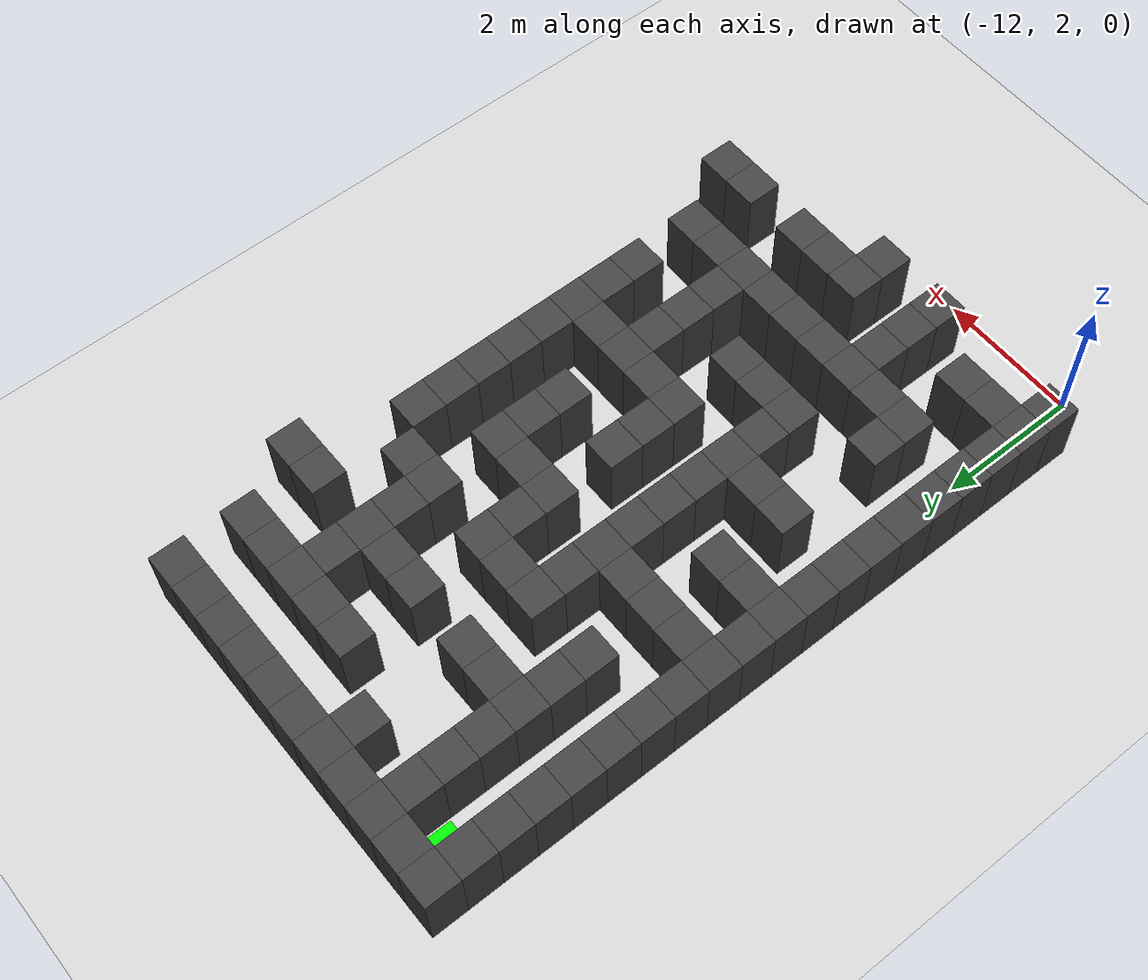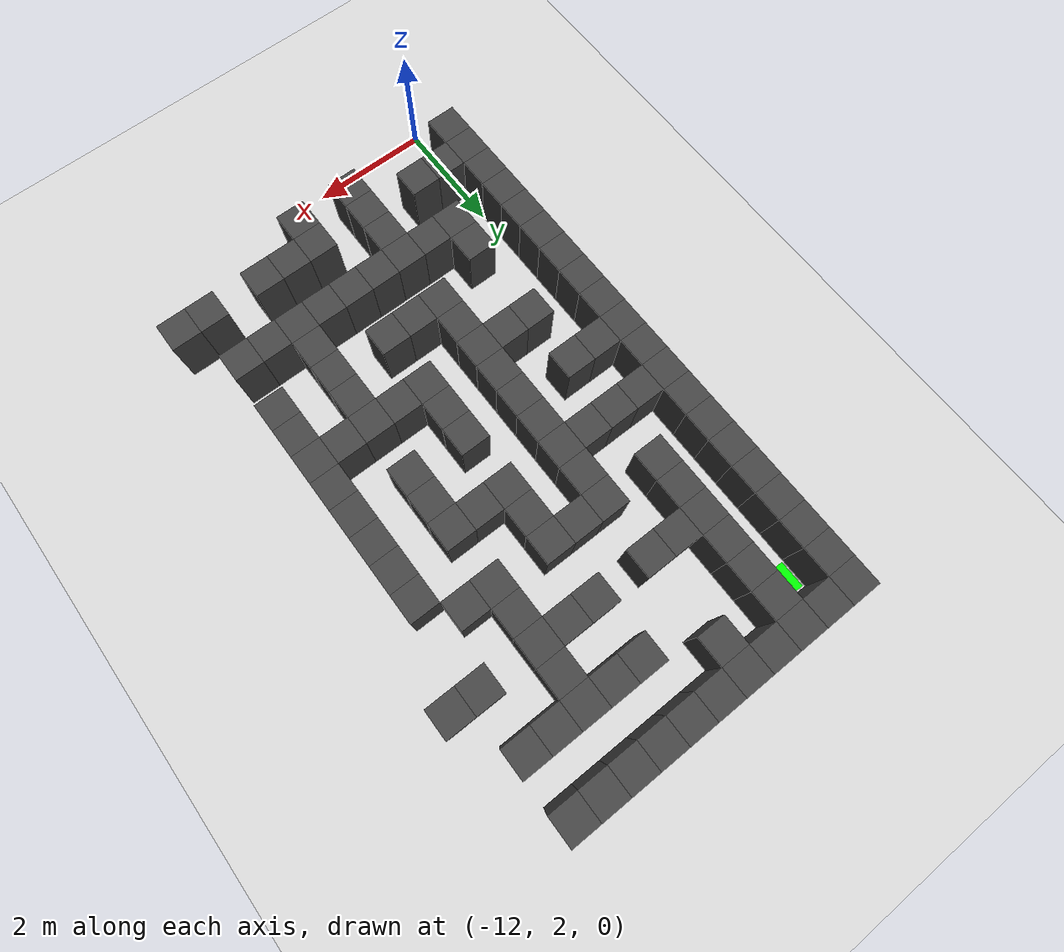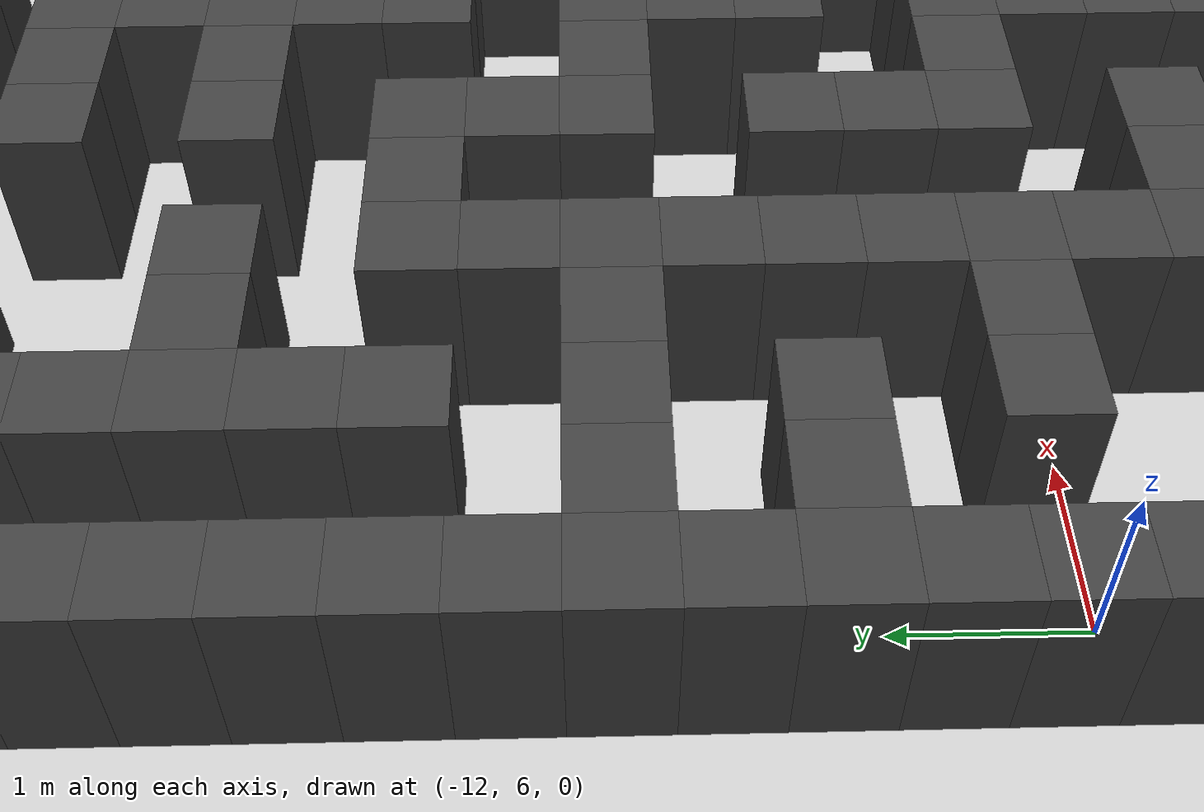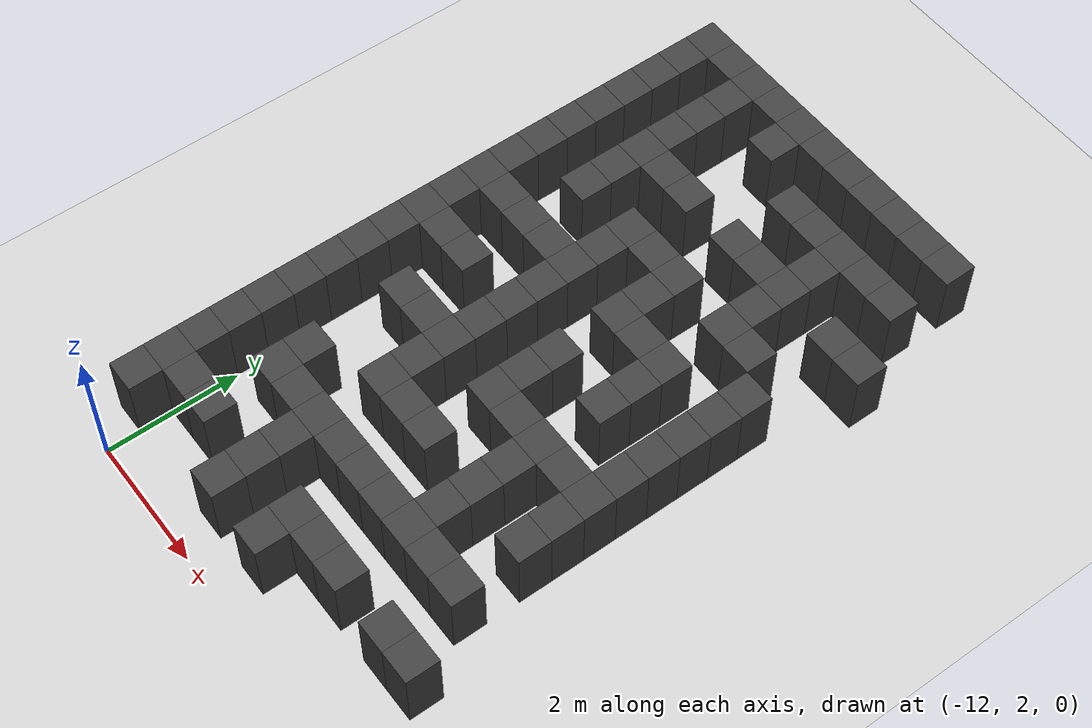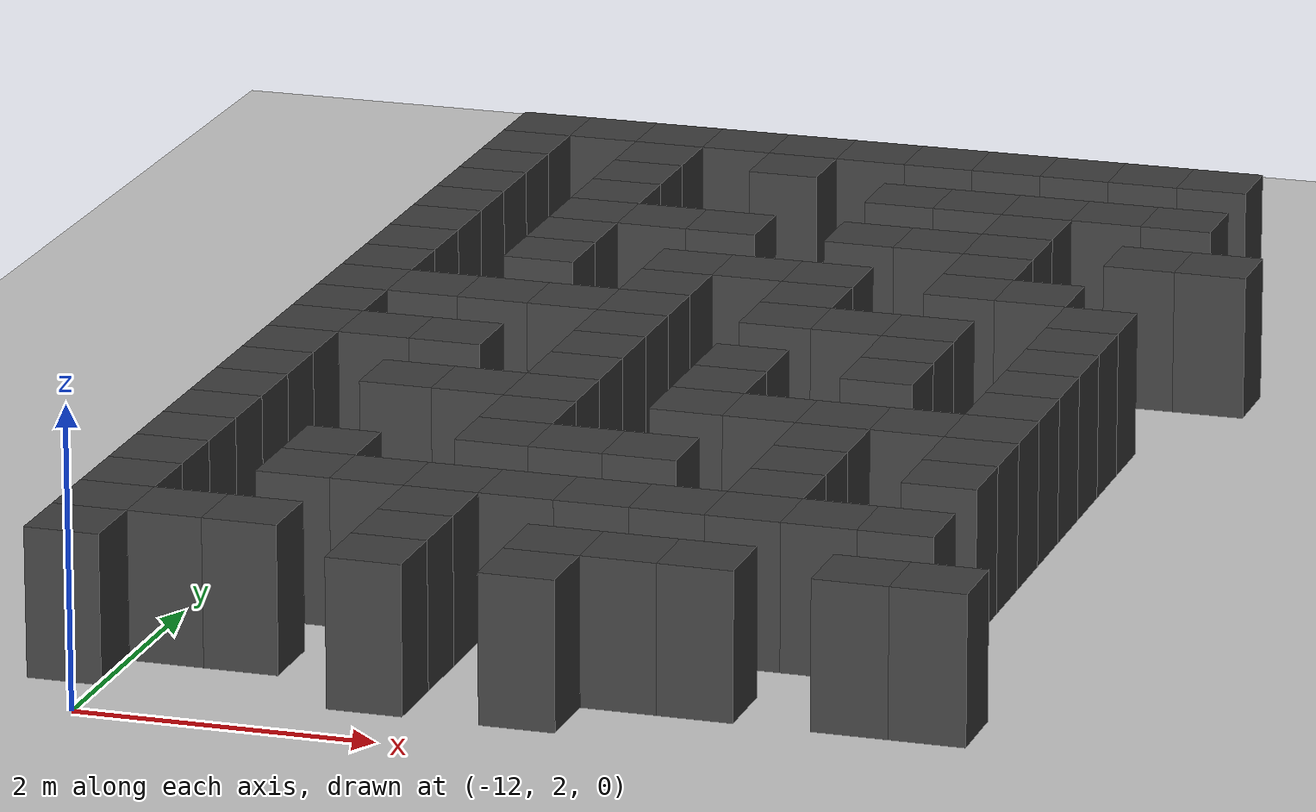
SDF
<sdf version="1.7">
 <world name="map_18332">
  <model name="ground_plane">
   <static>true</static>
   <link name="link">
    <collision name="collision">
     <geometry><plane><normal>0 0 1</normal><size>200 200</size></plane></geometry>
    </collision>
    <visual name="visual">
     <geometry><plane><normal>0 0 1</normal><size>200 200</size></plane></geometry>
     <material><ambient>0.8 0.8 0.8 1</ambient><diffuse>0.8 0.8 0.8 1</diffuse></material>
    </visual>
   </link>
  </model>
  <model name="maze_environment">
   <static>true</static>
   <link name="wall_0">
    <pose>-12.250 12.250 0.500 0 0 0</pose>
    <collision name="col"><geometry><box><size>0.5 0.5 1.0</size></box></geometry></collision>
    <visual name="vis">
     <geometry><box><size>0.5 0.5 1.0</size></box></geometry>
     <material><ambient>0.15 0.15 0.15 1</ambient><diffuse>0.25 0.25 0.25 1</diffuse></material>
    </visual>
   </link>
   <link name="wall_1">
    <pose>-11.750 12.250 0.500 0 0 0</pose>
    <collision name="col"><geometry><box><size>0.5 0.5 1.0</size></box></geometry></collision>
    <visual name="vis">
     <geometry><box><size>0.5 0.5 1.0</size></box></geometry>
     <material><ambient>0.15 0.15 0.15 1</ambient><diffuse>0.25 0.25 0.25 1</diffuse></material>
    </visual>
   </link>
   <link name="wall_2">
    <pose>-11.250 12.250 0.500 0 0 0</pose>
    <collision name="col"><geometry><box><size>0.5 0.5 1.0</size></box></geometry></collision>
    <visual name="vis">
     <geometry><box><size>0.5 0.5 1.0</size></box></geometry>
     <material><ambient>0.15 0.15 0.15 1</ambient><diffuse>0.25 0.25 0.25 1</diffuse></material>
    </visual>
   </link>
   <link name="wall_3">
    <pose>-10.750 12.250 0.500 0 0 0</pose>
    <collision name="col"><geometry><box><size>0.5 0.5 1.0</size></box></geometry></collision>
    <visual name="vis">
     <geometry><box><size>0.5 0.5 1.0</size></box></geometry>
     <material><ambient>0.15 0.15 0.15 1</ambient><diffuse>0.25 0.25 0.25 1</diffuse></material>
    </visual>
   </link>
   <link name="wall_4">
    <pose>-10.250 12.250 0.500 0 0 0</pose>
    <collision name="col"><geometry><box><size>0.5 0.5 1.0</size></box></geometry></collision>
    <visual name="vis">
     <geometry><box><size>0.5 0.5 1.0</size></box></geometry>
     <material><ambient>0.15 0.15 0.15 1</ambient><diffuse>0.25 0.25 0.25 1</diffuse></material>
    </visual>
   </link>
   <link name="wall_5">
    <pose>-9.750 12.250 0.500 0 0 0</pose>
    <collision name="col"><geometry><box><size>0.5 0.5 1.0</size></box></geometry></collision>
    <visual name="vis">
     <geometry><box><size>0.5 0.5 1.0</size></box></geometry>
     <material><ambient>0.15 0.15 0.15 1</ambient><diffuse>0.25 0.25 0.25 1</diffuse></material>
    </visual>
   </link>
   <link name="wall_6">
    <pose>-9.250 12.250 0.500 0 0 0</pose>
    <collision name="col"><geometry><box><size>0.5 0.5 1.0</size></box></geometry></collision>
    <visual name="vis">
     <geometry><box><size>0.5 0.5 1.0</size></box></geometry>
     <material><ambient>0.15 0.15 0.15 1</ambient><diffuse>0.25 0.25 0.25 1</diffuse></material>
    </visual>
   </link>
   <link name="wall_7">
    <pose>-8.750 12.250 0.500 0 0 0</pose>
    <collision name="col"><geometry><box><size>0.5 0.5 1.0</size></box></geometry></collision>
    <visual name="vis">
     <geometry><box><size>0.5 0.5 1.0</size></box></geometry>
     <material><ambient>0.15 0.15 0.15 1</ambient><diffuse>0.25 0.25 0.25 1</diffuse></material>
    </visual>
   </link>
   <link name="wall_8">
    <pose>-8.250 12.250 0.500 0 0 0</pose>
    <collision name="col"><geometry><box><size>0.5 0.5 1.0</size></box></geometry></collision>
    <visual name="vis">
     <geometry><box><size>0.5 0.5 1.0</size></box></geometry>
     <material><ambient>0.15 0.15 0.15 1</ambient><diffuse>0.25 0.25 0.25 1</diffuse></material>
    </visual>
   </link>
   <link name="wall_9">
    <pose>-7.750 12.250 0.500 0 0 0</pose>
    <collision name="col"><geometry><box><size>0.5 0.5 1.0</size></box></geometry></collision>
    <visual name="vis">
     <geometry><box><size>0.5 0.5 1.0</size></box></geometry>
     <material><ambient>0.15 0.15 0.15 1</ambient><diffuse>0.25 0.25 0.25 1</diffuse></material>
    </visual>
   </link>
   <link name="wall_10">
    <pose>-7.250 12.250 0.500 0 0 0</pose>
    <collision name="col"><geometry><box><size>0.5 0.5 1.0</size></box></geometry></collision>
    <visual name="vis">
     <geometry><box><size>0.5 0.5 1.0</size></box></geometry>
     <material><ambient>0.15 0.15 0.15 1</ambient><diffuse>0.25 0.25 0.25 1</diffuse></material>
    </visual>
   </link>
   <link name="wall_50">
    <pose>-12.250 11.750 0.500 0 0 0</pose>
    <collision name="col"><geometry><box><size>0.5 0.5 1.0</size></box></geometry></collision>
    <visual name="vis">
     <geometry><box><size>0.5 0.5 1.0</size></box></geometry>
     <material><ambient>0.15 0.15 0.15 1</ambient><diffuse>0.25 0.25 0.25 1</diffuse></material>
    </visual>
   </link>
   <link name="wall_51">
    <pose>-11.250 11.750 0.500 0 0 0</pose>
    <collision name="col"><geometry><box><size>0.5 0.5 1.0</size></box></geometry></collision>
    <visual name="vis">
     <geometry><box><size>0.5 0.5 1.0</size></box></geometry>
     <material><ambient>0.15 0.15 0.15 1</ambient><diffuse>0.25 0.25 0.25 1</diffuse></material>
    </visual>
   </link>
   <link name="wall_52">
    <pose>-10.250 11.750 0.500 0 0 0</pose>
    <collision name="col"><geometry><box><size>0.5 0.5 1.0</size></box></geometry></collision>
    <visual name="vis">
     <geometry><box><size>0.5 0.5 1.0</size></box></geometry>
     <material><ambient>0.15 0.15 0.15 1</ambient><diffuse>0.25 0.25 0.25 1</diffuse></material>
    </visual>
   </link>
   <link name="wall_58">
    <pose>-12.250 11.250 0.500 0 0 0</pose>
    <collision name="col"><geometry><box><size>0.5 0.5 1.0</size></box></geometry></collision>
    <visual name="vis">
     <geometry><box><size>0.5 0.5 1.0</size></box></geometry>
     <material><ambient>0.15 0.15 0.15 1</ambient><diffuse>0.25 0.25 0.25 1</diffuse></material>
    </visual>
   </link>
   <link name="wall_59">
    <pose>-11.250 11.250 0.500 0 0 0</pose>
    <collision name="col"><geometry><box><size>0.5 0.5 1.0</size></box></geometry></collision>
    <visual name="vis">
     <geometry><box><size>0.5 0.5 1.0</size></box></geometry>
     <material><ambient>0.15 0.15 0.15 1</ambient><diffuse>0.25 0.25 0.25 1</diffuse></material>
    </visual>
   </link>
   <link name="wall_60">
    <pose>-9.250 11.250 0.500 0 0 0</pose>
    <collision name="col"><geometry><box><size>0.5 0.5 1.0</size></box></geometry></collision>
    <visual name="vis">
     <geometry><box><size>0.5 0.5 1.0</size></box></geometry>
     <material><ambient>0.15 0.15 0.15 1</ambient><diffuse>0.25 0.25 0.25 1</diffuse></material>
    </visual>
   </link>
   <link name="wall_61">
    <pose>-8.750 11.250 0.500 0 0 0</pose>
    <collision name="col"><geometry><box><size>0.5 0.5 1.0</size></box></geometry></collision>
    <visual name="vis">
     <geometry><box><size>0.5 0.5 1.0</size></box></geometry>
     <material><ambient>0.15 0.15 0.15 1</ambient><diffuse>0.25 0.25 0.25 1</diffuse></material>
    </visual>
   </link>
   <link name="wall_62">
    <pose>-8.250 11.250 0.500 0 0 0</pose>
    <collision name="col"><geometry><box><size>0.5 0.5 1.0</size></box></geometry></collision>
    <visual name="vis">
     <geometry><box><size>0.5 0.5 1.0</size></box></geometry>
     <material><ambient>0.15 0.15 0.15 1</ambient><diffuse>0.25 0.25 0.25 1</diffuse></material>
    </visual>
   </link>
   <link name="wall_63">
    <pose>-7.750 11.250 0.500 0 0 0</pose>
    <collision name="col"><geometry><box><size>0.5 0.5 1.0</size></box></geometry></collision>
    <visual name="vis">
     <geometry><box><size>0.5 0.5 1.0</size></box></geometry>
     <material><ambient>0.15 0.15 0.15 1</ambient><diffuse>0.25 0.25 0.25 1</diffuse></material>
    </visual>
   </link>
   <link name="wall_64">
    <pose>-7.250 11.250 0.500 0 0 0</pose>
    <collision name="col"><geometry><box><size>0.5 0.5 1.0</size></box></geometry></collision>
    <visual name="vis">
     <geometry><box><size>0.5 0.5 1.0</size></box></geometry>
     <material><ambient>0.15 0.15 0.15 1</ambient><diffuse>0.25 0.25 0.25 1</diffuse></material>
    </visual>
   </link>
   <link name="wall_93">
    <pose>-12.250 10.750 0.500 0 0 0</pose>
    <collision name="col"><geometry><box><size>0.5 0.5 1.0</size></box></geometry></collision>
    <visual name="vis">
     <geometry><box><size>0.5 0.5 1.0</size></box></geometry>
     <material><ambient>0.15 0.15 0.15 1</ambient><diffuse>0.25 0.25 0.25 1</diffuse></material>
    </visual>
   </link>
   <link name="wall_94">
    <pose>-11.250 10.750 0.500 0 0 0</pose>
    <collision name="col"><geometry><box><size>0.5 0.5 1.0</size></box></geometry></collision>
    <visual name="vis">
     <geometry><box><size>0.5 0.5 1.0</size></box></geometry>
     <material><ambient>0.15 0.15 0.15 1</ambient><diffuse>0.25 0.25 0.25 1</diffuse></material>
    </visual>
   </link>
   <link name="wall_95">
    <pose>-8.250 10.750 0.500 0 0 0</pose>
    <collision name="col"><geometry><box><size>0.5 0.5 1.0</size></box></geometry></collision>
    <visual name="vis">
     <geometry><box><size>0.5 0.5 1.0</size></box></geometry>
     <material><ambient>0.15 0.15 0.15 1</ambient><diffuse>0.25 0.25 0.25 1</diffuse></material>
    </visual>
   </link>
   <link name="wall_107">
    <pose>-12.250 10.250 0.500 0 0 0</pose>
    <collision name="col"><geometry><box><size>0.5 0.5 1.0</size></box></geometry></collision>
    <visual name="vis">
     <geometry><box><size>0.5 0.5 1.0</size></box></geometry>
     <material><ambient>0.15 0.15 0.15 1</ambient><diffuse>0.25 0.25 0.25 1</diffuse></material>
    </visual>
   </link>
   <link name="wall_108">
    <pose>-11.250 10.250 0.500 0 0 0</pose>
    <collision name="col"><geometry><box><size>0.5 0.5 1.0</size></box></geometry></collision>
    <visual name="vis">
     <geometry><box><size>0.5 0.5 1.0</size></box></geometry>
     <material><ambient>0.15 0.15 0.15 1</ambient><diffuse>0.25 0.25 0.25 1</diffuse></material>
    </visual>
   </link>
   <link name="wall_109">
    <pose>-10.750 10.250 0.500 0 0 0</pose>
    <collision name="col"><geometry><box><size>0.5 0.5 1.0</size></box></geometry></collision>
    <visual name="vis">
     <geometry><box><size>0.5 0.5 1.0</size></box></geometry>
     <material><ambient>0.15 0.15 0.15 1</ambient><diffuse>0.25 0.25 0.25 1</diffuse></material>
    </visual>
   </link>
   <link name="wall_110">
    <pose>-10.250 10.250 0.500 0 0 0</pose>
    <collision name="col"><geometry><box><size>0.5 0.5 1.0</size></box></geometry></collision>
    <visual name="vis">
     <geometry><box><size>0.5 0.5 1.0</size></box></geometry>
     <material><ambient>0.15 0.15 0.15 1</ambient><diffuse>0.25 0.25 0.25 1</diffuse></material>
    </visual>
   </link>
   <link name="wall_111">
    <pose>-9.250 10.250 0.500 0 0 0</pose>
    <collision name="col"><geometry><box><size>0.5 0.5 1.0</size></box></geometry></collision>
    <visual name="vis">
     <geometry><box><size>0.5 0.5 1.0</size></box></geometry>
     <material><ambient>0.15 0.15 0.15 1</ambient><diffuse>0.25 0.25 0.25 1</diffuse></material>
    </visual>
   </link>
   <link name="wall_112">
    <pose>-8.750 10.250 0.500 0 0 0</pose>
    <collision name="col"><geometry><box><size>0.5 0.5 1.0</size></box></geometry></collision>
    <visual name="vis">
     <geometry><box><size>0.5 0.5 1.0</size></box></geometry>
     <material><ambient>0.15 0.15 0.15 1</ambient><diffuse>0.25 0.25 0.25 1</diffuse></material>
    </visual>
   </link>
   <link name="wall_113">
    <pose>-8.250 10.250 0.500 0 0 0</pose>
    <collision name="col"><geometry><box><size>0.5 0.5 1.0</size></box></geometry></collision>
    <visual name="vis">
     <geometry><box><size>0.5 0.5 1.0</size></box></geometry>
     <material><ambient>0.15 0.15 0.15 1</ambient><diffuse>0.25 0.25 0.25 1</diffuse></material>
    </visual>
   </link>
   <link name="wall_114">
    <pose>-7.250 10.250 0.500 0 0 0</pose>
    <collision name="col"><geometry><box><size>0.5 0.5 1.0</size></box></geometry></collision>
    <visual name="vis">
     <geometry><box><size>0.5 0.5 1.0</size></box></geometry>
     <material><ambient>0.15 0.15 0.15 1</ambient><diffuse>0.25 0.25 0.25 1</diffuse></material>
    </visual>
   </link>
   <link name="wall_115">
    <pose>-6.750 10.250 0.500 0 0 0</pose>
    <collision name="col"><geometry><box><size>0.5 0.5 1.0</size></box></geometry></collision>
    <visual name="vis">
     <geometry><box><size>0.5 0.5 1.0</size></box></geometry>
     <material><ambient>0.15 0.15 0.15 1</ambient><diffuse>0.25 0.25 0.25 1</diffuse></material>
    </visual>
   </link>
   <link name="wall_145">
    <pose>-12.250 9.750 0.500 0 0 0</pose>
    <collision name="col"><geometry><box><size>0.5 0.5 1.0</size></box></geometry></collision>
    <visual name="vis">
     <geometry><box><size>0.5 0.5 1.0</size></box></geometry>
     <material><ambient>0.15 0.15 0.15 1</ambient><diffuse>0.25 0.25 0.25 1</diffuse></material>
    </visual>
   </link>
   <link name="wall_146">
    <pose>-11.250 9.750 0.500 0 0 0</pose>
    <collision name="col"><geometry><box><size>0.5 0.5 1.0</size></box></geometry></collision>
    <visual name="vis">
     <geometry><box><size>0.5 0.5 1.0</size></box></geometry>
     <material><ambient>0.15 0.15 0.15 1</ambient><diffuse>0.25 0.25 0.25 1</diffuse></material>
    </visual>
   </link>
   <link name="wall_147">
    <pose>-8.250 9.750 0.500 0 0 0</pose>
    <collision name="col"><geometry><box><size>0.5 0.5 1.0</size></box></geometry></collision>
    <visual name="vis">
     <geometry><box><size>0.5 0.5 1.0</size></box></geometry>
     <material><ambient>0.15 0.15 0.15 1</ambient><diffuse>0.25 0.25 0.25 1</diffuse></material>
    </visual>
   </link>
   <link name="wall_159">
    <pose>-12.250 9.250 0.500 0 0 0</pose>
    <collision name="col"><geometry><box><size>0.5 0.5 1.0</size></box></geometry></collision>
    <visual name="vis">
     <geometry><box><size>0.5 0.5 1.0</size></box></geometry>
     <material><ambient>0.15 0.15 0.15 1</ambient><diffuse>0.25 0.25 0.25 1</diffuse></material>
    </visual>
   </link>
   <link name="wall_160">
    <pose>-11.250 9.250 0.500 0 0 0</pose>
    <collision name="col"><geometry><box><size>0.5 0.5 1.0</size></box></geometry></collision>
    <visual name="vis">
     <geometry><box><size>0.5 0.5 1.0</size></box></geometry>
     <material><ambient>0.15 0.15 0.15 1</ambient><diffuse>0.25 0.25 0.25 1</diffuse></material>
    </visual>
   </link>
   <link name="wall_161">
    <pose>-10.250 9.250 0.500 0 0 0</pose>
    <collision name="col"><geometry><box><size>0.5 0.5 1.0</size></box></geometry></collision>
    <visual name="vis">
     <geometry><box><size>0.5 0.5 1.0</size></box></geometry>
     <material><ambient>0.15 0.15 0.15 1</ambient><diffuse>0.25 0.25 0.25 1</diffuse></material>
    </visual>
   </link>
   <link name="wall_162">
    <pose>-9.750 9.250 0.500 0 0 0</pose>
    <collision name="col"><geometry><box><size>0.5 0.5 1.0</size></box></geometry></collision>
    <visual name="vis">
     <geometry><box><size>0.5 0.5 1.0</size></box></geometry>
     <material><ambient>0.15 0.15 0.15 1</ambient><diffuse>0.25 0.25 0.25 1</diffuse></material>
    </visual>
   </link>
   <link name="wall_163">
    <pose>-9.250 9.250 0.500 0 0 0</pose>
    <collision name="col"><geometry><box><size>0.5 0.5 1.0</size></box></geometry></collision>
    <visual name="vis">
     <geometry><box><size>0.5 0.5 1.0</size></box></geometry>
     <material><ambient>0.15 0.15 0.15 1</ambient><diffuse>0.25 0.25 0.25 1</diffuse></material>
    </visual>
   </link>
   <link name="wall_164">
    <pose>-8.250 9.250 0.500 0 0 0</pose>
    <collision name="col"><geometry><box><size>0.5 0.5 1.0</size></box></geometry></collision>
    <visual name="vis">
     <geometry><box><size>0.5 0.5 1.0</size></box></geometry>
     <material><ambient>0.15 0.15 0.15 1</ambient><diffuse>0.25 0.25 0.25 1</diffuse></material>
    </visual>
   </link>
   <link name="wall_165">
    <pose>-7.750 9.250 0.500 0 0 0</pose>
    <collision name="col"><geometry><box><size>0.5 0.5 1.0</size></box></geometry></collision>
    <visual name="vis">
     <geometry><box><size>0.5 0.5 1.0</size></box></geometry>
     <material><ambient>0.15 0.15 0.15 1</ambient><diffuse>0.25 0.25 0.25 1</diffuse></material>
    </visual>
   </link>
   <link name="wall_194">
    <pose>-12.250 8.750 0.500 0 0 0</pose>
    <collision name="col"><geometry><box><size>0.5 0.5 1.0</size></box></geometry></collision>
    <visual name="vis">
     <geometry><box><size>0.5 0.5 1.0</size></box></geometry>
     <material><ambient>0.15 0.15 0.15 1</ambient><diffuse>0.25 0.25 0.25 1</diffuse></material>
    </visual>
   </link>
   <link name="wall_195">
    <pose>-10.250 8.750 0.500 0 0 0</pose>
    <collision name="col"><geometry><box><size>0.5 0.5 1.0</size></box></geometry></collision>
    <visual name="vis">
     <geometry><box><size>0.5 0.5 1.0</size></box></geometry>
     <material><ambient>0.15 0.15 0.15 1</ambient><diffuse>0.25 0.25 0.25 1</diffuse></material>
    </visual>
   </link>
   <link name="wall_196">
    <pose>-9.250 8.750 0.500 0 0 0</pose>
    <collision name="col"><geometry><box><size>0.5 0.5 1.0</size></box></geometry></collision>
    <visual name="vis">
     <geometry><box><size>0.5 0.5 1.0</size></box></geometry>
     <material><ambient>0.15 0.15 0.15 1</ambient><diffuse>0.25 0.25 0.25 1</diffuse></material>
    </visual>
   </link>
   <link name="wall_197">
    <pose>-7.250 8.750 0.500 0 0 0</pose>
    <collision name="col"><geometry><box><size>0.5 0.5 1.0</size></box></geometry></collision>
    <visual name="vis">
     <geometry><box><size>0.5 0.5 1.0</size></box></geometry>
     <material><ambient>0.15 0.15 0.15 1</ambient><diffuse>0.25 0.25 0.25 1</diffuse></material>
    </visual>
   </link>
   <link name="wall_208">
    <pose>-12.250 8.250 0.500 0 0 0</pose>
    <collision name="col"><geometry><box><size>0.5 0.5 1.0</size></box></geometry></collision>
    <visual name="vis">
     <geometry><box><size>0.5 0.5 1.0</size></box></geometry>
     <material><ambient>0.15 0.15 0.15 1</ambient><diffuse>0.25 0.25 0.25 1</diffuse></material>
    </visual>
   </link>
   <link name="wall_209">
    <pose>-11.750 8.250 0.500 0 0 0</pose>
    <collision name="col"><geometry><box><size>0.5 0.5 1.0</size></box></geometry></collision>
    <visual name="vis">
     <geometry><box><size>0.5 0.5 1.0</size></box></geometry>
     <material><ambient>0.15 0.15 0.15 1</ambient><diffuse>0.25 0.25 0.25 1</diffuse></material>
    </visual>
   </link>
   <link name="wall_210">
    <pose>-11.250 8.250 0.500 0 0 0</pose>
    <collision name="col"><geometry><box><size>0.5 0.5 1.0</size></box></geometry></collision>
    <visual name="vis">
     <geometry><box><size>0.5 0.5 1.0</size></box></geometry>
     <material><ambient>0.15 0.15 0.15 1</ambient><diffuse>0.25 0.25 0.25 1</diffuse></material>
    </visual>
   </link>
   <link name="wall_211">
    <pose>-10.750 8.250 0.500 0 0 0</pose>
    <collision name="col"><geometry><box><size>0.5 0.5 1.0</size></box></geometry></collision>
    <visual name="vis">
     <geometry><box><size>0.5 0.5 1.0</size></box></geometry>
     <material><ambient>0.15 0.15 0.15 1</ambient><diffuse>0.25 0.25 0.25 1</diffuse></material>
    </visual>
   </link>
   <link name="wall_212">
    <pose>-10.250 8.250 0.500 0 0 0</pose>
    <collision name="col"><geometry><box><size>0.5 0.5 1.0</size></box></geometry></collision>
    <visual name="vis">
     <geometry><box><size>0.5 0.5 1.0</size></box></geometry>
     <material><ambient>0.15 0.15 0.15 1</ambient><diffuse>0.25 0.25 0.25 1</diffuse></material>
    </visual>
   </link>
   <link name="wall_213">
    <pose>-9.250 8.250 0.500 0 0 0</pose>
    <collision name="col"><geometry><box><size>0.5 0.5 1.0</size></box></geometry></collision>
    <visual name="vis">
     <geometry><box><size>0.5 0.5 1.0</size></box></geometry>
     <material><ambient>0.15 0.15 0.15 1</ambient><diffuse>0.25 0.25 0.25 1</diffuse></material>
    </visual>
   </link>
   <link name="wall_214">
    <pose>-8.750 8.250 0.500 0 0 0</pose>
    <collision name="col"><geometry><box><size>0.5 0.5 1.0</size></box></geometry></collision>
    <visual name="vis">
     <geometry><box><size>0.5 0.5 1.0</size></box></geometry>
     <material><ambient>0.15 0.15 0.15 1</ambient><diffuse>0.25 0.25 0.25 1</diffuse></material>
    </visual>
   </link>
   <link name="wall_215">
    <pose>-8.250 8.250 0.500 0 0 0</pose>
    <collision name="col"><geometry><box><size>0.5 0.5 1.0</size></box></geometry></collision>
    <visual name="vis">
     <geometry><box><size>0.5 0.5 1.0</size></box></geometry>
     <material><ambient>0.15 0.15 0.15 1</ambient><diffuse>0.25 0.25 0.25 1</diffuse></material>
    </visual>
   </link>
   <link name="wall_216">
    <pose>-7.250 8.250 0.500 0 0 0</pose>
    <collision name="col"><geometry><box><size>0.5 0.5 1.0</size></box></geometry></collision>
    <visual name="vis">
     <geometry><box><size>0.5 0.5 1.0</size></box></geometry>
     <material><ambient>0.15 0.15 0.15 1</ambient><diffuse>0.25 0.25 0.25 1</diffuse></material>
    </visual>
   </link>
   <link name="wall_244">
    <pose>-12.250 7.750 0.500 0 0 0</pose>
    <collision name="col"><geometry><box><size>0.5 0.5 1.0</size></box></geometry></collision>
    <visual name="vis">
     <geometry><box><size>0.5 0.5 1.0</size></box></geometry>
     <material><ambient>0.15 0.15 0.15 1</ambient><diffuse>0.25 0.25 0.25 1</diffuse></material>
    </visual>
   </link>
   <link name="wall_245">
    <pose>-10.250 7.750 0.500 0 0 0</pose>
    <collision name="col"><geometry><box><size>0.5 0.5 1.0</size></box></geometry></collision>
    <visual name="vis">
     <geometry><box><size>0.5 0.5 1.0</size></box></geometry>
     <material><ambient>0.15 0.15 0.15 1</ambient><diffuse>0.25 0.25 0.25 1</diffuse></material>
    </visual>
   </link>
   <link name="wall_246">
    <pose>-8.250 7.750 0.500 0 0 0</pose>
    <collision name="col"><geometry><box><size>0.5 0.5 1.0</size></box></geometry></collision>
    <visual name="vis">
     <geometry><box><size>0.5 0.5 1.0</size></box></geometry>
     <material><ambient>0.15 0.15 0.15 1</ambient><diffuse>0.25 0.25 0.25 1</diffuse></material>
    </visual>
   </link>
   <link name="wall_247">
    <pose>-7.250 7.750 0.500 0 0 0</pose>
    <collision name="col"><geometry><box><size>0.5 0.5 1.0</size></box></geometry></collision>
    <visual name="vis">
     <geometry><box><size>0.5 0.5 1.0</size></box></geometry>
     <material><ambient>0.15 0.15 0.15 1</ambient><diffuse>0.25 0.25 0.25 1</diffuse></material>
    </visual>
   </link>
   <link name="wall_258">
    <pose>-12.250 7.250 0.500 0 0 0</pose>
    <collision name="col"><geometry><box><size>0.5 0.5 1.0</size></box></geometry></collision>
    <visual name="vis">
     <geometry><box><size>0.5 0.5 1.0</size></box></geometry>
     <material><ambient>0.15 0.15 0.15 1</ambient><diffuse>0.25 0.25 0.25 1</diffuse></material>
    </visual>
   </link>
   <link name="wall_259">
    <pose>-11.750 7.250 0.500 0 0 0</pose>
    <collision name="col"><geometry><box><size>0.5 0.5 1.0</size></box></geometry></collision>
    <visual name="vis">
     <geometry><box><size>0.5 0.5 1.0</size></box></geometry>
     <material><ambient>0.15 0.15 0.15 1</ambient><diffuse>0.25 0.25 0.25 1</diffuse></material>
    </visual>
   </link>
   <link name="wall_260">
    <pose>-11.250 7.250 0.500 0 0 0</pose>
    <collision name="col"><geometry><box><size>0.5 0.5 1.0</size></box></geometry></collision>
    <visual name="vis">
     <geometry><box><size>0.5 0.5 1.0</size></box></geometry>
     <material><ambient>0.15 0.15 0.15 1</ambient><diffuse>0.25 0.25 0.25 1</diffuse></material>
    </visual>
   </link>
   <link name="wall_261">
    <pose>-10.250 7.250 0.500 0 0 0</pose>
    <collision name="col"><geometry><box><size>0.5 0.5 1.0</size></box></geometry></collision>
    <visual name="vis">
     <geometry><box><size>0.5 0.5 1.0</size></box></geometry>
     <material><ambient>0.15 0.15 0.15 1</ambient><diffuse>0.25 0.25 0.25 1</diffuse></material>
    </visual>
   </link>
   <link name="wall_262">
    <pose>-9.250 7.250 0.500 0 0 0</pose>
    <collision name="col"><geometry><box><size>0.5 0.5 1.0</size></box></geometry></collision>
    <visual name="vis">
     <geometry><box><size>0.5 0.5 1.0</size></box></geometry>
     <material><ambient>0.15 0.15 0.15 1</ambient><diffuse>0.25 0.25 0.25 1</diffuse></material>
    </visual>
   </link>
   <link name="wall_263">
    <pose>-8.250 7.250 0.500 0 0 0</pose>
    <collision name="col"><geometry><box><size>0.5 0.5 1.0</size></box></geometry></collision>
    <visual name="vis">
     <geometry><box><size>0.5 0.5 1.0</size></box></geometry>
     <material><ambient>0.15 0.15 0.15 1</ambient><diffuse>0.25 0.25 0.25 1</diffuse></material>
    </visual>
   </link>
   <link name="wall_264">
    <pose>-7.250 7.250 0.500 0 0 0</pose>
    <collision name="col"><geometry><box><size>0.5 0.5 1.0</size></box></geometry></collision>
    <visual name="vis">
     <geometry><box><size>0.5 0.5 1.0</size></box></geometry>
     <material><ambient>0.15 0.15 0.15 1</ambient><diffuse>0.25 0.25 0.25 1</diffuse></material>
    </visual>
   </link>
   <link name="wall_293">
    <pose>-12.250 6.750 0.500 0 0 0</pose>
    <collision name="col"><geometry><box><size>0.5 0.5 1.0</size></box></geometry></collision>
    <visual name="vis">
     <geometry><box><size>0.5 0.5 1.0</size></box></geometry>
     <material><ambient>0.15 0.15 0.15 1</ambient><diffuse>0.25 0.25 0.25 1</diffuse></material>
    </visual>
   </link>
   <link name="wall_294">
    <pose>-10.250 6.750 0.500 0 0 0</pose>
    <collision name="col"><geometry><box><size>0.5 0.5 1.0</size></box></geometry></collision>
    <visual name="vis">
     <geometry><box><size>0.5 0.5 1.0</size></box></geometry>
     <material><ambient>0.15 0.15 0.15 1</ambient><diffuse>0.25 0.25 0.25 1</diffuse></material>
    </visual>
   </link>
   <link name="wall_295">
    <pose>-9.250 6.750 0.500 0 0 0</pose>
    <collision name="col"><geometry><box><size>0.5 0.5 1.0</size></box></geometry></collision>
    <visual name="vis">
     <geometry><box><size>0.5 0.5 1.0</size></box></geometry>
     <material><ambient>0.15 0.15 0.15 1</ambient><diffuse>0.25 0.25 0.25 1</diffuse></material>
    </visual>
   </link>
   <link name="wall_296">
    <pose>-7.250 6.750 0.500 0 0 0</pose>
    <collision name="col"><geometry><box><size>0.5 0.5 1.0</size></box></geometry></collision>
    <visual name="vis">
     <geometry><box><size>0.5 0.5 1.0</size></box></geometry>
     <material><ambient>0.15 0.15 0.15 1</ambient><diffuse>0.25 0.25 0.25 1</diffuse></material>
    </visual>
   </link>
   <link name="wall_307">
    <pose>-12.250 6.250 0.500 0 0 0</pose>
    <collision name="col"><geometry><box><size>0.5 0.5 1.0</size></box></geometry></collision>
    <visual name="vis">
     <geometry><box><size>0.5 0.5 1.0</size></box></geometry>
     <material><ambient>0.15 0.15 0.15 1</ambient><diffuse>0.25 0.25 0.25 1</diffuse></material>
    </visual>
   </link>
   <link name="wall_308">
    <pose>-11.250 6.250 0.500 0 0 0</pose>
    <collision name="col"><geometry><box><size>0.5 0.5 1.0</size></box></geometry></collision>
    <visual name="vis">
     <geometry><box><size>0.5 0.5 1.0</size></box></geometry>
     <material><ambient>0.15 0.15 0.15 1</ambient><diffuse>0.25 0.25 0.25 1</diffuse></material>
    </visual>
   </link>
   <link name="wall_309">
    <pose>-10.750 6.250 0.500 0 0 0</pose>
    <collision name="col"><geometry><box><size>0.5 0.5 1.0</size></box></geometry></collision>
    <visual name="vis">
     <geometry><box><size>0.5 0.5 1.0</size></box></geometry>
     <material><ambient>0.15 0.15 0.15 1</ambient><diffuse>0.25 0.25 0.25 1</diffuse></material>
    </visual>
   </link>
   <link name="wall_310">
    <pose>-10.250 6.250 0.500 0 0 0</pose>
    <collision name="col"><geometry><box><size>0.5 0.5 1.0</size></box></geometry></collision>
    <visual name="vis">
     <geometry><box><size>0.5 0.5 1.0</size></box></geometry>
     <material><ambient>0.15 0.15 0.15 1</ambient><diffuse>0.25 0.25 0.25 1</diffuse></material>
    </visual>
   </link>
   <link name="wall_311">
    <pose>-9.250 6.250 0.500 0 0 0</pose>
    <collision name="col"><geometry><box><size>0.5 0.5 1.0</size></box></geometry></collision>
    <visual name="vis">
     <geometry><box><size>0.5 0.5 1.0</size></box></geometry>
     <material><ambient>0.15 0.15 0.15 1</ambient><diffuse>0.25 0.25 0.25 1</diffuse></material>
    </visual>
   </link>
   <link name="wall_312">
    <pose>-8.750 6.250 0.500 0 0 0</pose>
    <collision name="col"><geometry><box><size>0.5 0.5 1.0</size></box></geometry></collision>
    <visual name="vis">
     <geometry><box><size>0.5 0.5 1.0</size></box></geometry>
     <material><ambient>0.15 0.15 0.15 1</ambient><diffuse>0.25 0.25 0.25 1</diffuse></material>
    </visual>
   </link>
   <link name="wall_313">
    <pose>-8.250 6.250 0.500 0 0 0</pose>
    <collision name="col"><geometry><box><size>0.5 0.5 1.0</size></box></geometry></collision>
    <visual name="vis">
     <geometry><box><size>0.5 0.5 1.0</size></box></geometry>
     <material><ambient>0.15 0.15 0.15 1</ambient><diffuse>0.25 0.25 0.25 1</diffuse></material>
    </visual>
   </link>
   <link name="wall_314">
    <pose>-7.750 6.250 0.500 0 0 0</pose>
    <collision name="col"><geometry><box><size>0.5 0.5 1.0</size></box></geometry></collision>
    <visual name="vis">
     <geometry><box><size>0.5 0.5 1.0</size></box></geometry>
     <material><ambient>0.15 0.15 0.15 1</ambient><diffuse>0.25 0.25 0.25 1</diffuse></material>
    </visual>
   </link>
   <link name="wall_315">
    <pose>-7.250 6.250 0.500 0 0 0</pose>
    <collision name="col"><geometry><box><size>0.5 0.5 1.0</size></box></geometry></collision>
    <visual name="vis">
     <geometry><box><size>0.5 0.5 1.0</size></box></geometry>
     <material><ambient>0.15 0.15 0.15 1</ambient><diffuse>0.25 0.25 0.25 1</diffuse></material>
    </visual>
   </link>
   <link name="wall_347">
    <pose>-12.250 5.750 0.500 0 0 0</pose>
    <collision name="col"><geometry><box><size>0.5 0.5 1.0</size></box></geometry></collision>
    <visual name="vis">
     <geometry><box><size>0.5 0.5 1.0</size></box></geometry>
     <material><ambient>0.15 0.15 0.15 1</ambient><diffuse>0.25 0.25 0.25 1</diffuse></material>
    </visual>
   </link>
   <link name="wall_348">
    <pose>-10.250 5.750 0.500 0 0 0</pose>
    <collision name="col"><geometry><box><size>0.5 0.5 1.0</size></box></geometry></collision>
    <visual name="vis">
     <geometry><box><size>0.5 0.5 1.0</size></box></geometry>
     <material><ambient>0.15 0.15 0.15 1</ambient><diffuse>0.25 0.25 0.25 1</diffuse></material>
    </visual>
   </link>
   <link name="wall_349">
    <pose>-8.250 5.750 0.500 0 0 0</pose>
    <collision name="col"><geometry><box><size>0.5 0.5 1.0</size></box></geometry></collision>
    <visual name="vis">
     <geometry><box><size>0.5 0.5 1.0</size></box></geometry>
     <material><ambient>0.15 0.15 0.15 1</ambient><diffuse>0.25 0.25 0.25 1</diffuse></material>
    </visual>
   </link>
   <link name="wall_350">
    <pose>-7.250 5.750 0.500 0 0 0</pose>
    <collision name="col"><geometry><box><size>0.5 0.5 1.0</size></box></geometry></collision>
    <visual name="vis">
     <geometry><box><size>0.5 0.5 1.0</size></box></geometry>
     <material><ambient>0.15 0.15 0.15 1</ambient><diffuse>0.25 0.25 0.25 1</diffuse></material>
    </visual>
   </link>
   <link name="wall_361">
    <pose>-12.250 5.250 0.500 0 0 0</pose>
    <collision name="col"><geometry><box><size>0.5 0.5 1.0</size></box></geometry></collision>
    <visual name="vis">
     <geometry><box><size>0.5 0.5 1.0</size></box></geometry>
     <material><ambient>0.15 0.15 0.15 1</ambient><diffuse>0.25 0.25 0.25 1</diffuse></material>
    </visual>
   </link>
   <link name="wall_362">
    <pose>-10.250 5.250 0.500 0 0 0</pose>
    <collision name="col"><geometry><box><size>0.5 0.5 1.0</size></box></geometry></collision>
    <visual name="vis">
     <geometry><box><size>0.5 0.5 1.0</size></box></geometry>
     <material><ambient>0.15 0.15 0.15 1</ambient><diffuse>0.25 0.25 0.25 1</diffuse></material>
    </visual>
   </link>
   <link name="wall_363">
    <pose>-9.750 5.250 0.500 0 0 0</pose>
    <collision name="col"><geometry><box><size>0.5 0.5 1.0</size></box></geometry></collision>
    <visual name="vis">
     <geometry><box><size>0.5 0.5 1.0</size></box></geometry>
     <material><ambient>0.15 0.15 0.15 1</ambient><diffuse>0.25 0.25 0.25 1</diffuse></material>
    </visual>
   </link>
   <link name="wall_364">
    <pose>-9.250 5.250 0.500 0 0 0</pose>
    <collision name="col"><geometry><box><size>0.5 0.5 1.0</size></box></geometry></collision>
    <visual name="vis">
     <geometry><box><size>0.5 0.5 1.0</size></box></geometry>
     <material><ambient>0.15 0.15 0.15 1</ambient><diffuse>0.25 0.25 0.25 1</diffuse></material>
    </visual>
   </link>
   <link name="wall_365">
    <pose>-8.250 5.250 0.500 0 0 0</pose>
    <collision name="col"><geometry><box><size>0.5 0.5 1.0</size></box></geometry></collision>
    <visual name="vis">
     <geometry><box><size>0.5 0.5 1.0</size></box></geometry>
     <material><ambient>0.15 0.15 0.15 1</ambient><diffuse>0.25 0.25 0.25 1</diffuse></material>
    </visual>
   </link>
   <link name="wall_366">
    <pose>-7.250 5.250 0.500 0 0 0</pose>
    <collision name="col"><geometry><box><size>0.5 0.5 1.0</size></box></geometry></collision>
    <visual name="vis">
     <geometry><box><size>0.5 0.5 1.0</size></box></geometry>
     <material><ambient>0.15 0.15 0.15 1</ambient><diffuse>0.25 0.25 0.25 1</diffuse></material>
    </visual>
   </link>
   <link name="wall_393">
    <pose>-12.250 4.750 0.500 0 0 0</pose>
    <collision name="col"><geometry><box><size>0.5 0.5 1.0</size></box></geometry></collision>
    <visual name="vis">
     <geometry><box><size>0.5 0.5 1.0</size></box></geometry>
     <material><ambient>0.15 0.15 0.15 1</ambient><diffuse>0.25 0.25 0.25 1</diffuse></material>
    </visual>
   </link>
   <link name="wall_394">
    <pose>-11.250 4.750 0.500 0 0 0</pose>
    <collision name="col"><geometry><box><size>0.5 0.5 1.0</size></box></geometry></collision>
    <visual name="vis">
     <geometry><box><size>0.5 0.5 1.0</size></box></geometry>
     <material><ambient>0.15 0.15 0.15 1</ambient><diffuse>0.25 0.25 0.25 1</diffuse></material>
    </visual>
   </link>
   <link name="wall_395">
    <pose>-8.250 4.750 0.500 0 0 0</pose>
    <collision name="col"><geometry><box><size>0.5 0.5 1.0</size></box></geometry></collision>
    <visual name="vis">
     <geometry><box><size>0.5 0.5 1.0</size></box></geometry>
     <material><ambient>0.15 0.15 0.15 1</ambient><diffuse>0.25 0.25 0.25 1</diffuse></material>
    </visual>
   </link>
   <link name="wall_408">
    <pose>-12.250 4.250 0.500 0 0 0</pose>
    <collision name="col"><geometry><box><size>0.5 0.5 1.0</size></box></geometry></collision>
    <visual name="vis">
     <geometry><box><size>0.5 0.5 1.0</size></box></geometry>
     <material><ambient>0.15 0.15 0.15 1</ambient><diffuse>0.25 0.25 0.25 1</diffuse></material>
    </visual>
   </link>
   <link name="wall_409">
    <pose>-11.250 4.250 0.500 0 0 0</pose>
    <collision name="col"><geometry><box><size>0.5 0.5 1.0</size></box></geometry></collision>
    <visual name="vis">
     <geometry><box><size>0.5 0.5 1.0</size></box></geometry>
     <material><ambient>0.15 0.15 0.15 1</ambient><diffuse>0.25 0.25 0.25 1</diffuse></material>
    </visual>
   </link>
   <link name="wall_410">
    <pose>-10.750 4.250 0.500 0 0 0</pose>
    <collision name="col"><geometry><box><size>0.5 0.5 1.0</size></box></geometry></collision>
    <visual name="vis">
     <geometry><box><size>0.5 0.5 1.0</size></box></geometry>
     <material><ambient>0.15 0.15 0.15 1</ambient><diffuse>0.25 0.25 0.25 1</diffuse></material>
    </visual>
   </link>
   <link name="wall_411">
    <pose>-10.250 4.250 0.500 0 0 0</pose>
    <collision name="col"><geometry><box><size>0.5 0.5 1.0</size></box></geometry></collision>
    <visual name="vis">
     <geometry><box><size>0.5 0.5 1.0</size></box></geometry>
     <material><ambient>0.15 0.15 0.15 1</ambient><diffuse>0.25 0.25 0.25 1</diffuse></material>
    </visual>
   </link>
   <link name="wall_412">
    <pose>-9.750 4.250 0.500 0 0 0</pose>
    <collision name="col"><geometry><box><size>0.5 0.5 1.0</size></box></geometry></collision>
    <visual name="vis">
     <geometry><box><size>0.5 0.5 1.0</size></box></geometry>
     <material><ambient>0.15 0.15 0.15 1</ambient><diffuse>0.25 0.25 0.25 1</diffuse></material>
    </visual>
   </link>
   <link name="wall_413">
    <pose>-9.250 4.250 0.500 0 0 0</pose>
    <collision name="col"><geometry><box><size>0.5 0.5 1.0</size></box></geometry></collision>
    <visual name="vis">
     <geometry><box><size>0.5 0.5 1.0</size></box></geometry>
     <material><ambient>0.15 0.15 0.15 1</ambient><diffuse>0.25 0.25 0.25 1</diffuse></material>
    </visual>
   </link>
   <link name="wall_414">
    <pose>-8.750 4.250 0.500 0 0 0</pose>
    <collision name="col"><geometry><box><size>0.5 0.5 1.0</size></box></geometry></collision>
    <visual name="vis">
     <geometry><box><size>0.5 0.5 1.0</size></box></geometry>
     <material><ambient>0.15 0.15 0.15 1</ambient><diffuse>0.25 0.25 0.25 1</diffuse></material>
    </visual>
   </link>
   <link name="wall_415">
    <pose>-8.250 4.250 0.500 0 0 0</pose>
    <collision name="col"><geometry><box><size>0.5 0.5 1.0</size></box></geometry></collision>
    <visual name="vis">
     <geometry><box><size>0.5 0.5 1.0</size></box></geometry>
     <material><ambient>0.15 0.15 0.15 1</ambient><diffuse>0.25 0.25 0.25 1</diffuse></material>
    </visual>
   </link>
   <link name="wall_416">
    <pose>-7.750 4.250 0.500 0 0 0</pose>
    <collision name="col"><geometry><box><size>0.5 0.5 1.0</size></box></geometry></collision>
    <visual name="vis">
     <geometry><box><size>0.5 0.5 1.0</size></box></geometry>
     <material><ambient>0.15 0.15 0.15 1</ambient><diffuse>0.25 0.25 0.25 1</diffuse></material>
    </visual>
   </link>
   <link name="wall_417">
    <pose>-7.250 4.250 0.500 0 0 0</pose>
    <collision name="col"><geometry><box><size>0.5 0.5 1.0</size></box></geometry></collision>
    <visual name="vis">
     <geometry><box><size>0.5 0.5 1.0</size></box></geometry>
     <material><ambient>0.15 0.15 0.15 1</ambient><diffuse>0.25 0.25 0.25 1</diffuse></material>
    </visual>
   </link>
   <link name="wall_447">
    <pose>-12.250 3.750 0.500 0 0 0</pose>
    <collision name="col"><geometry><box><size>0.5 0.5 1.0</size></box></geometry></collision>
    <visual name="vis">
     <geometry><box><size>0.5 0.5 1.0</size></box></geometry>
     <material><ambient>0.15 0.15 0.15 1</ambient><diffuse>0.25 0.25 0.25 1</diffuse></material>
    </visual>
   </link>
   <link name="wall_448">
    <pose>-10.250 3.750 0.500 0 0 0</pose>
    <collision name="col"><geometry><box><size>0.5 0.5 1.0</size></box></geometry></collision>
    <visual name="vis">
     <geometry><box><size>0.5 0.5 1.0</size></box></geometry>
     <material><ambient>0.15 0.15 0.15 1</ambient><diffuse>0.25 0.25 0.25 1</diffuse></material>
    </visual>
   </link>
   <link name="wall_460">
    <pose>-12.250 3.250 0.500 0 0 0</pose>
    <collision name="col"><geometry><box><size>0.5 0.5 1.0</size></box></geometry></collision>
    <visual name="vis">
     <geometry><box><size>0.5 0.5 1.0</size></box></geometry>
     <material><ambient>0.15 0.15 0.15 1</ambient><diffuse>0.25 0.25 0.25 1</diffuse></material>
    </visual>
   </link>
   <link name="wall_461">
    <pose>-11.750 3.250 0.500 0 0 0</pose>
    <collision name="col"><geometry><box><size>0.5 0.5 1.0</size></box></geometry></collision>
    <visual name="vis">
     <geometry><box><size>0.5 0.5 1.0</size></box></geometry>
     <material><ambient>0.15 0.15 0.15 1</ambient><diffuse>0.25 0.25 0.25 1</diffuse></material>
    </visual>
   </link>
   <link name="wall_462">
    <pose>-11.250 3.250 0.500 0 0 0</pose>
    <collision name="col"><geometry><box><size>0.5 0.5 1.0</size></box></geometry></collision>
    <visual name="vis">
     <geometry><box><size>0.5 0.5 1.0</size></box></geometry>
     <material><ambient>0.15 0.15 0.15 1</ambient><diffuse>0.25 0.25 0.25 1</diffuse></material>
    </visual>
   </link>
   <link name="wall_463">
    <pose>-10.250 3.250 0.500 0 0 0</pose>
    <collision name="col"><geometry><box><size>0.5 0.5 1.0</size></box></geometry></collision>
    <visual name="vis">
     <geometry><box><size>0.5 0.5 1.0</size></box></geometry>
     <material><ambient>0.15 0.15 0.15 1</ambient><diffuse>0.25 0.25 0.25 1</diffuse></material>
    </visual>
   </link>
   <link name="wall_464">
    <pose>-9.250 3.250 0.500 0 0 0</pose>
    <collision name="col"><geometry><box><size>0.5 0.5 1.0</size></box></geometry></collision>
    <visual name="vis">
     <geometry><box><size>0.5 0.5 1.0</size></box></geometry>
     <material><ambient>0.15 0.15 0.15 1</ambient><diffuse>0.25 0.25 0.25 1</diffuse></material>
    </visual>
   </link>
   <link name="wall_465">
    <pose>-8.750 3.250 0.500 0 0 0</pose>
    <collision name="col"><geometry><box><size>0.5 0.5 1.0</size></box></geometry></collision>
    <visual name="vis">
     <geometry><box><size>0.5 0.5 1.0</size></box></geometry>
     <material><ambient>0.15 0.15 0.15 1</ambient><diffuse>0.25 0.25 0.25 1</diffuse></material>
    </visual>
   </link>
   <link name="wall_466">
    <pose>-8.250 3.250 0.500 0 0 0</pose>
    <collision name="col"><geometry><box><size>0.5 0.5 1.0</size></box></geometry></collision>
    <visual name="vis">
     <geometry><box><size>0.5 0.5 1.0</size></box></geometry>
     <material><ambient>0.15 0.15 0.15 1</ambient><diffuse>0.25 0.25 0.25 1</diffuse></material>
    </visual>
   </link>
   <link name="wall_467">
    <pose>-7.250 3.250 0.500 0 0 0</pose>
    <collision name="col"><geometry><box><size>0.5 0.5 1.0</size></box></geometry></collision>
    <visual name="vis">
     <geometry><box><size>0.5 0.5 1.0</size></box></geometry>
     <material><ambient>0.15 0.15 0.15 1</ambient><diffuse>0.25 0.25 0.25 1</diffuse></material>
    </visual>
   </link>
   <link name="wall_468">
    <pose>-6.750 3.250 0.500 0 0 0</pose>
    <collision name="col"><geometry><box><size>0.5 0.5 1.0</size></box></geometry></collision>
    <visual name="vis">
     <geometry><box><size>0.5 0.5 1.0</size></box></geometry>
     <material><ambient>0.15 0.15 0.15 1</ambient><diffuse>0.25 0.25 0.25 1</diffuse></material>
    </visual>
   </link>
   <link name="wall_496">
    <pose>-12.250 2.750 0.500 0 0 0</pose>
    <collision name="col"><geometry><box><size>0.5 0.5 1.0</size></box></geometry></collision>
    <visual name="vis">
     <geometry><box><size>0.5 0.5 1.0</size></box></geometry>
     <material><ambient>0.15 0.15 0.15 1</ambient><diffuse>0.25 0.25 0.25 1</diffuse></material>
    </visual>
   </link>
   <link name="wall_497">
    <pose>-10.250 2.750 0.500 0 0 0</pose>
    <collision name="col"><geometry><box><size>0.5 0.5 1.0</size></box></geometry></collision>
    <visual name="vis">
     <geometry><box><size>0.5 0.5 1.0</size></box></geometry>
     <material><ambient>0.15 0.15 0.15 1</ambient><diffuse>0.25 0.25 0.25 1</diffuse></material>
    </visual>
   </link>
   <link name="wall_498">
    <pose>-9.250 2.750 0.500 0 0 0</pose>
    <collision name="col"><geometry><box><size>0.5 0.5 1.0</size></box></geometry></collision>
    <visual name="vis">
     <geometry><box><size>0.5 0.5 1.0</size></box></geometry>
     <material><ambient>0.15 0.15 0.15 1</ambient><diffuse>0.25 0.25 0.25 1</diffuse></material>
    </visual>
   </link>
   <link name="start_zone">
    <pose>-11.750 11.750 0.005 0 0 0</pose>
    <visual name="vis">
     <geometry><box><size>0.45 0.45 0.01</size></box></geometry>
     <material>
      <ambient>0.0 1.0 0.0 1</ambient>
      <diffuse>0.0 1.0 0.0 1</diffuse>
      <emissive>0.00 0.60 0.00 1</emissive>
     </material>
    </visual>
   </link>
  </model>
 </world>
</sdf>
